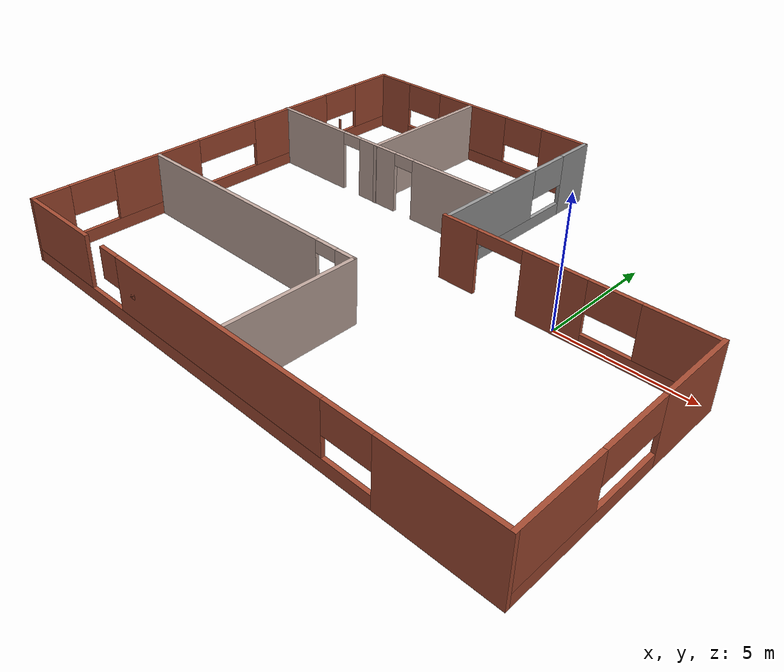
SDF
<?xml version='1.0'?>
<sdf version='1.6'>
  <model name='myoffice'>
    <pose frame=''>-12.2241 -0.674506 0 0 -0 0</pose>
    <link name='Wall_21'>
      <pose frame=''>12.5709 0.560445 0 0 -0 0</pose>
      <visual name='Wall_21_Visual_0'>
        <pose frame=''>-4.25338 0 1.25 0 -0 0</pose>
        <geometry>
          <box>
            <size>1.49323 0.15 2.5</size>
          </box>
        </geometry>
        <material>
          <script>
            <uri>file://media/materials/scripts/gazebo.material</uri>
            <name>Gazebo/Bricks</name>
          </script>
          <ambient>1 1 1 1</ambient>
        </material>
        <meta>
          <layer>0</layer>
        </meta>
      </visual>
      <collision name='Wall_21_Collision_0'>
        <geometry>
          <box>
            <size>1.49323 0.15 2.5</size>
          </box>
        </geometry>
        <pose frame=''>-4.25338 0 1.25 0 -0 0</pose>
      </collision>
      <visual name='Wall_21_Visual_1'>
        <pose frame=''>-0.514467 0 1.25 0 -0 0</pose>
        <geometry>
          <box>
            <size>2.3846 0.15 2.5</size>
          </box>
        </geometry>
        <material>
          <script>
            <uri>file://media/materials/scripts/gazebo.material</uri>
            <name>Gazebo/Bricks</name>
          </script>
          <ambient>1 1 1 1</ambient>
        </material>
        <meta>
          <layer>0</layer>
        </meta>
      </visual>
      <collision name='Wall_21_Collision_1'>
        <geometry>
          <box>
            <size>2.3846 0.15 2.5</size>
          </box>
        </geometry>
        <pose frame=''>-0.514467 0 1.25 0 -0 0</pose>
      </collision>
      <visual name='Wall_21_Visual_2'>
        <pose frame=''>2.83892 0 0.25 0 -0 0</pose>
        <geometry>
          <box>
            <size>4.32217 0.15 0.5</size>
          </box>
        </geometry>
        <material>
          <script>
            <uri>file://media/materials/scripts/gazebo.material</uri>
            <name>Gazebo/Bricks</name>
          </script>
          <ambient>1 1 1 1</ambient>
        </material>
        <meta>
          <layer>0</layer>
        </meta>
      </visual>
      <collision name='Wall_21_Collision_2'>
        <geometry>
          <box>
            <size>4.32217 0.15 0.5</size>
          </box>
        </geometry>
        <pose frame=''>2.83892 0 0.25 0 -0 0</pose>
      </collision>
      <visual name='Wall_21_Visual_3'>
        <pose frame=''>3.73892 0 1.5 0 -0 0</pose>
        <geometry>
          <box>
            <size>2.52217 0.15 2</size>
          </box>
        </geometry>
        <material>
          <script>
            <uri>file://media/materials/scripts/gazebo.material</uri>
            <name>Gazebo/Bricks</name>
          </script>
          <ambient>1 1 1 1</ambient>
        </material>
        <meta>
          <layer>0</layer>
        </meta>
      </visual>
      <collision name='Wall_21_Collision_3'>
        <geometry>
          <box>
            <size>2.52217 0.15 2</size>
          </box>
        </geometry>
        <pose frame=''>3.73892 0 1.5 0 -0 0</pose>
      </collision>
      <visual name='Wall_21_Visual_4'>
        <pose frame=''>1.57783 0 1.9 0 -0 0</pose>
        <geometry>
          <box>
            <size>1.8 0.15 1.2</size>
          </box>
        </geometry>
        <material>
          <script>
            <uri>file://media/materials/scripts/gazebo.material</uri>
            <name>Gazebo/Bricks</name>
          </script>
          <ambient>1 1 1 1</ambient>
        </material>
        <meta>
          <layer>0</layer>
        </meta>
      </visual>
      <collision name='Wall_21_Collision_4'>
        <geometry>
          <box>
            <size>1.8 0.15 1.2</size>
          </box>
        </geometry>
        <pose frame=''>1.57783 0 1.9 0 -0 0</pose>
      </collision>
      <visual name='Wall_21_Visual_5'>
        <pose frame=''>-2.60677 0 2.25 0 -0 0</pose>
        <geometry>
          <box>
            <size>1.8 0.15 0.5</size>
          </box>
        </geometry>
        <material>
          <script>
            <uri>file://media/materials/scripts/gazebo.material</uri>
            <name>Gazebo/Bricks</name>
          </script>
          <ambient>1 1 1 1</ambient>
        </material>
        <meta>
          <layer>0</layer>
        </meta>
      </visual>
      <collision name='Wall_21_Collision_5'>
        <geometry>
          <box>
            <size>1.8 0.15 1.2</size>
          </box>
        </geometry>
        <pose frame=''>-2.60677 0 2.25 0 -0 0</pose>
      </collision>
    </link>
    <link name='Wall_22'>
      <pose frame=''>17.4959 -4.11456 0 0 0 -1.5708</pose>
      <visual name='Wall_22_Visual_0'>
        <pose frame=''>-3.16191 0 1.25 0 -0 0</pose>
        <geometry>
          <box>
            <size>3.23784 0.15 2.5</size>
          </box>
        </geometry>
        <material>
          <script>
            <uri>file://media/materials/scripts/gazebo.material</uri>
            <name>Gazebo/Bricks</name>
          </script>
          <ambient>1 1 1 1</ambient>
        </material>
        <meta>
          <layer>0</layer>
        </meta>
      </visual>
      <collision name='Wall_22_Collision_0'>
        <geometry>
          <box>
            <size>3.23784 0.15 2.5</size>
          </box>
        </geometry>
        <pose frame=''>-3.16191 0 1.25 0 -0 0</pose>
      </collision>
      <visual name='Wall_22_Visual_1'>
        <pose frame=''>1.61892 0 0.25 0 -0 0</pose>
        <geometry>
          <box>
            <size>6.32383 0.15 0.5</size>
          </box>
        </geometry>
        <material>
          <script>
            <uri>file://media/materials/scripts/gazebo.material</uri>
            <name>Gazebo/Bricks</name>
          </script>
          <ambient>1 1 1 1</ambient>
        </material>
        <meta>
          <layer>0</layer>
        </meta>
      </visual>
      <collision name='Wall_22_Collision_1'>
        <geometry>
          <box>
            <size>6.32383 0.15 0.5</size>
          </box>
        </geometry>
        <pose frame=''>1.61892 0 0.25 0 -0 0</pose>
      </collision>
      <visual name='Wall_22_Visual_2'>
        <pose frame=''>3.01892 0 1.5 0 -0 0</pose>
        <geometry>
          <box>
            <size>3.52383 0.15 2</size>
          </box>
        </geometry>
        <material>
          <script>
            <uri>file://media/materials/scripts/gazebo.material</uri>
            <name>Gazebo/Bricks</name>
          </script>
          <ambient>1 1 1 1</ambient>
        </material>
        <meta>
          <layer>0</layer>
        </meta>
      </visual>
      <collision name='Wall_22_Collision_2'>
        <geometry>
          <box>
            <size>3.52383 0.15 2</size>
          </box>
        </geometry>
        <pose frame=''>3.01892 0 1.5 0 -0 0</pose>
      </collision>
      <visual name='Wall_22_Visual_3'>
        <pose frame=''>-0.142992 0 1.9 0 -0 0</pose>
        <geometry>
          <box>
            <size>2.8 0.15 1.2</size>
          </box>
        </geometry>
        <material>
          <script>
            <uri>file://media/materials/scripts/gazebo.material</uri>
            <name>Gazebo/Bricks</name>
          </script>
          <ambient>1 1 1 1</ambient>
        </material>
        <meta>
          <layer>0</layer>
        </meta>
      </visual>
      <collision name='Wall_22_Collision_3'>
        <geometry>
          <box>
            <size>2.8 0.15 1.2</size>
          </box>
        </geometry>
        <pose frame=''>-0.142992 0 1.9 0 -0 0</pose>
      </collision>
    </link>
    <link name='Wall_23'>
      <pose frame=''>7.19589 -8.82039 0 0 -0 3.14159</pose>
      <visual name='Wall_23_Visual_0'>
        <pose frame=''>-8.29614 0 1.25 0 -0 0</pose>
        <geometry>
          <box>
            <size>4.15772 0.15 2.5</size>
          </box>
        </geometry>
        <material>
          <script>
            <uri>file://media/materials/scripts/gazebo.material</uri>
            <name>Gazebo/Bricks</name>
          </script>
          <ambient>1 1 1 1</ambient>
        </material>
        <meta>
          <layer>0</layer>
        </meta>
      </visual>
      <collision name='Wall_23_Collision_0'>
        <geometry>
          <box>
            <size>4.15772 0.15 2.5</size>
          </box>
        </geometry>
        <pose frame=''>-8.29614 0 1.25 0 -0 0</pose>
      </collision>
      <visual name='Wall_23_Visual_1'>
        <pose frame=''>2.07886 0 0.25 0 -0 0</pose>
        <geometry>
          <box>
            <size>16.5923 0.15 0.5</size>
          </box>
        </geometry>
        <material>
          <script>
            <uri>file://media/materials/scripts/gazebo.material</uri>
            <name>Gazebo/Bricks</name>
          </script>
          <ambient>1 1 1 1</ambient>
        </material>
        <meta>
          <layer>0</layer>
        </meta>
      </visual>
      <collision name='Wall_23_Collision_1'>
        <geometry>
          <box>
            <size>16.5923 0.15 0.5</size>
          </box>
        </geometry>
        <pose frame=''>2.07886 0 0.25 0 -0 0</pose>
      </collision>
      <visual name='Wall_23_Visual_2'>
        <pose frame=''>0.259691 0 1.5 0 -0 0</pose>
        <geometry>
          <box>
            <size>9.35394 0.15 2</size>
          </box>
        </geometry>
        <material>
          <script>
            <uri>file://media/materials/scripts/gazebo.material</uri>
            <name>Gazebo/Bricks</name>
          </script>
          <ambient>1 1 1 1</ambient>
        </material>
        <meta>
          <layer>0</layer>
        </meta>
      </visual>
      <collision name='Wall_23_Collision_2'>
        <geometry>
          <box>
            <size>9.35394 0.15 2</size>
          </box>
        </geometry>
        <pose frame=''>0.259691 0 1.5 0 -0 0</pose>
      </collision>
      <visual name='Wall_23_Visual_3'>
        <pose frame=''>8.55583 0 1.5 0 -0 0</pose>
        <geometry>
          <box>
            <size>3.63834 0.15 2</size>
          </box>
        </geometry>
        <material>
          <script>
            <uri>file://media/materials/scripts/gazebo.material</uri>
            <name>Gazebo/Bricks</name>
          </script>
          <ambient>1 1 1 1</ambient>
        </material>
        <meta>
          <layer>0</layer>
        </meta>
      </visual>
      <collision name='Wall_23_Collision_3'>
        <geometry>
          <box>
            <size>3.63834 0.15 2</size>
          </box>
        </geometry>
        <pose frame=''>8.55583 0 1.5 0 -0 0</pose>
      </collision>
      <visual name='Wall_23_Visual_4'>
        <pose frame=''>-5.31728 0 1.9 0 -0 0</pose>
        <geometry>
          <box>
            <size>1.8 0.15 1.2</size>
          </box>
        </geometry>
        <material>
          <script>
            <uri>file://media/materials/scripts/gazebo.material</uri>
            <name>Gazebo/Bricks</name>
          </script>
          <ambient>1 1 1 1</ambient>
        </material>
        <meta>
          <layer>0</layer>
        </meta>
      </visual>
      <collision name='Wall_23_Collision_4'>
        <geometry>
          <box>
            <size>1.8 0.15 1.2</size>
          </box>
        </geometry>
        <pose frame=''>-5.31728 0 1.9 0 -0 0</pose>
      </collision>
      <visual name='Wall_23_Visual_5'>
        <pose frame=''>4.93666 0 1.9 0 -0 0</pose>
        <geometry>
          <box>
            <size>1.8 0.15 1.2</size>
          </box>
        </geometry>
        <material>
          <script>
            <uri>file://media/materials/scripts/gazebo.material</uri>
            <name>Gazebo/Bricks</name>
          </script>
          <ambient>1 1 1 1</ambient>
        </material>
        <meta>
          <layer>0</layer>
        </meta>
      </visual>
      <collision name='Wall_23_Collision_5'>
        <geometry>
          <box>
            <size>1.8 0.15 1.2</size>
          </box>
        </geometry>
        <pose frame=''>4.93666 0 1.9 0 -0 0</pose>
      </collision>
    </link>
    <link name='Wall_24'>
      <pose frame=''>-3.10411 0 0 0 -0 1.5708</pose>
      <visual name='Wall_24_Visual_0'>
        <pose frame=''>-8.15706 0 1.25 0 -0 0</pose>
        <geometry>
          <box>
            <size>1.47665 0.15 2.5</size>
          </box>
        </geometry>
        <material>
          <script>
            <uri>file://media/materials/scripts/gazebo.material</uri>
            <name>Gazebo/Bricks</name>
          </script>
          <ambient>1 1 1 1</ambient>
        </material>
        <meta>
          <layer>0</layer>
        </meta>
      </visual>
      <collision name='Wall_24_Collision_0'>
        <geometry>
          <box>
            <size>1.47665 0.15 2.5</size>
          </box>
        </geometry>
        <pose frame=''>-8.15706 0 1.25 0 -0 0</pose>
      </collision>
      <visual name='Wall_24_Visual_1'>
        <pose frame=''>-4.58531 0 0.25 0 -0 0</pose>
        <geometry>
          <box>
            <size>5.66684 0.15 0.5</size>
          </box>
        </geometry>
        <material>
          <script>
            <uri>file://media/materials/scripts/gazebo.material</uri>
            <name>Gazebo/Bricks</name>
          </script>
          <ambient>1 1 1 1</ambient>
        </material>
        <meta>
          <layer>0</layer>
        </meta>
      </visual>
      <collision name='Wall_24_Collision_1'>
        <geometry>
          <box>
            <size>5.66684 0.15 0.5</size>
          </box>
        </geometry>
        <pose frame=''>-4.58531 0 0.25 0 -0 0</pose>
      </collision>
      <visual name='Wall_24_Visual_2'>
        <pose frame=''>3.57175 0 0.25 0 -0 0</pose>
        <geometry>
          <box>
            <size>10.6473 0.15 0.5</size>
          </box>
        </geometry>
        <material>
          <script>
            <uri>file://media/materials/scripts/gazebo.material</uri>
            <name>Gazebo/Bricks</name>
          </script>
          <ambient>1 1 1 1</ambient>
        </material>
        <meta>
          <layer>0</layer>
        </meta>
      </visual>
      <collision name='Wall_24_Collision_2'>
        <geometry>
          <box>
            <size>10.6473 0.15 0.5</size>
          </box>
        </geometry>
        <pose frame=''>3.57175 0 0.25 0 -0 0</pose>
      </collision>
      <visual name='Wall_24_Visual_3'>
        <pose frame=''>3.07537 0 1.5 0 -0 0</pose>
        <geometry>
          <box>
            <size>4.05453 0.15 2</size>
          </box>
        </geometry>
        <material>
          <script>
            <uri>file://media/materials/scripts/gazebo.material</uri>
            <name>Gazebo/Bricks</name>
          </script>
          <ambient>1 1 1 1</ambient>
        </material>
        <meta>
          <layer>0</layer>
        </meta>
      </visual>
      <collision name='Wall_24_Collision_3'>
        <geometry>
          <box>
            <size>4.05453 0.15 2</size>
          </box>
        </geometry>
        <pose frame=''>3.07537 0 1.5 0 -0 0</pose>
      </collision>
      <visual name='Wall_24_Visual_4'>
        <pose frame=''>7.89901 0 1.5 0 -0 0</pose>
        <geometry>
          <box>
            <size>1.99275 0.15 2</size>
          </box>
        </geometry>
        <material>
          <script>
            <uri>file://media/materials/scripts/gazebo.material</uri>
            <name>Gazebo/Bricks</name>
          </script>
          <ambient>1 1 1 1</ambient>
        </material>
        <meta>
          <layer>0</layer>
        </meta>
      </visual>
      <collision name='Wall_24_Collision_4'>
        <geometry>
          <box>
            <size>1.99275 0.15 2</size>
          </box>
        </geometry>
        <pose frame=''>7.89901 0 1.5 0 -0 0</pose>
      </collision>
      <visual name='Wall_24_Visual_5'>
        <pose frame=''>6.00263 0 0.5 0 -0 0</pose>
        <geometry>
          <box>
            <size>0.0 0.15 1.2</size>
          </box>
        </geometry>
        <material>
          <script>
            <uri>file://media/materials/scripts/gazebo.material</uri>
            <name>Gazebo/Bricks</name>
          </script>
          <ambient>1 1 1 1</ambient>
        </material>
        <meta>
          <layer>0</layer>
        </meta>
      </visual>
      <collision name='Wall_24_Collision_5'>
        <geometry>
          <box>
            <size>1.8 0.15 1.2</size>
          </box>
        </geometry>
        <pose frame=''>6.00263 0 0.5 0 -0 0</pose>
      </collision>
      <visual name='Wall_24_Visual_6'>
        <pose frame=''>-3.68532 0 1.5 0 -0 0</pose>
        <geometry>
          <box>
            <size>3.86684 0.15 2</size>
          </box>
        </geometry>
        <material>
          <script>
            <uri>file://media/materials/scripts/gazebo.material</uri>
            <name>Gazebo/Bricks</name>
          </script>
          <ambient>1 1 1 1</ambient>
        </material>
        <meta>
          <layer>0</layer>
        </meta>
      </visual>
      <collision name='Wall_24_Collision_6'>
        <geometry>
          <box>
            <size>3.86684 0.15 2</size>
          </box>
        </geometry>
        <pose frame=''>-3.68532 0 1.5 0 -0 0</pose>
      </collision>
      <visual name='Wall_24_Visual_7'>
        <pose frame=''>-3.68532 0 1.5 0 -0 0</pose>
        <geometry>
          <box>
            <size>3.86684 0.15 2</size>
          </box>
        </geometry>
        <material>
          <script>
            <uri>file://media/materials/scripts/gazebo.material</uri>
            <name>Gazebo/Bricks</name>
          </script>
          <ambient>1 1 1 1</ambient>
        </material>
        <meta>
          <layer>0</layer>
        </meta>
      </visual>
      <collision name='Wall_24_Collision_7'>
        <geometry>
          <box>
            <size>3.86684 0.15 2</size>
          </box>
        </geometry>
        <pose frame=''>-3.68532 0 1.5 0 -0 0</pose>
      </collision>
      <visual name='Wall_24_Visual_8'>
        <pose frame=''>-6.51874 0 1.9 0 -0 0</pose>
        <geometry>
          <box>
            <size>1.8 0.15 1.2</size>
          </box>
        </geometry>
        <material>
          <script>
            <uri>file://media/materials/scripts/gazebo.material</uri>
            <name>Gazebo/Bricks</name>
          </script>
          <ambient>1 1 1 1</ambient>
        </material>
        <meta>
          <layer>0</layer>
        </meta>
      </visual>
      <collision name='Wall_24_Collision_8'>
        <geometry>
          <box>
            <size>1.8 0.15 1.2</size>
          </box>
        </geometry>
        <pose frame=''>-6.51874 0 1.9 0 -0 0</pose>
      </collision>
      <visual name='Wall_24_Visual_9'>
        <pose frame=''>6.00263 0 1.9 0 -0 0</pose>
        <geometry>
          <box>
            <size>1.8 0.15 1.2</size>
          </box>
        </geometry>
        <material>
          <script>
            <uri>file://media/materials/scripts/gazebo.material</uri>
            <name>Gazebo/Bricks</name>
          </script>
          <ambient>1 1 1 1</ambient>
        </material>
        <meta>
          <layer>0</layer>
        </meta>
      </visual>
      <collision name='Wall_24_Collision_9'>
        <geometry>
          <box>
            <size>1.8 0.15 1.2</size>
          </box>
        </geometry>
        <pose frame=''>6.00263 0 1.9 0 -0 0</pose>
      </collision>
      <visual name='Wall_24_Visual_10'>
        <pose frame=''>-0.351894 0 2 0 -0 0</pose>
        <geometry>
          <box>
            <size>2.8 0.15 1</size>
          </box>
        </geometry>
        <material>
          <script>
            <uri>file://media/materials/scripts/gazebo.material</uri>
            <name>Gazebo/Bricks</name>
          </script>
          <ambient>1 1 1 1</ambient>
        </material>
        <meta>
          <layer>0</layer>
        </meta>
      </visual>
      <collision name='Wall_24_Collision_10'>
        <geometry>
          <box>
            <size>2.8 0.15 1</size>
          </box>
        </geometry>
        <pose frame=''>-0.351894 0 2 0 -0 0</pose>
      </collision>
      <visual name='Wall_24_Visual_11'>
        <pose frame=''>-0.351894 0 2 0 -0 0</pose>
        <geometry>
          <box>
            <size>2.8 0.15 1</size>
          </box>
        </geometry>
        <material>
          <script>
            <uri>file://media/materials/scripts/gazebo.material</uri>
            <name>Gazebo/Bricks</name>
          </script>
          <ambient>1 1 1 1</ambient>
        </material>
        <meta>
          <layer>0</layer>
        </meta>
      </visual>
      <collision name='Wall_24_Collision_11'>
        <geometry>
          <box>
            <size>2.8 0.15 1</size>
          </box>
        </geometry>
        <pose frame=''>-0.351894 0 2 0 -0 0</pose>
      </collision>
    </link>
    <link name='Wall_25'>
      <pose frame=''>2.32089 8.8 0 0 -0 0</pose>
      <visual name='Wall_25_Visual_0'>
        <pose frame=''>-4.60586 0 1.25 0 -0 0</pose>
        <geometry>
          <box>
            <size>1.78828 0.15 2.5</size>
          </box>
        </geometry>
        <material>
          <script>
            <uri>file://media/materials/scripts/gazebo.material</uri>
            <name>Gazebo/Bricks</name>
          </script>
          <ambient>1 1 1 1</ambient>
        </material>
        <meta>
          <layer>0</layer>
        </meta>
      </visual>
      <collision name='Wall_25_Collision_0'>
        <geometry>
          <box>
            <size>1.78828 0.15 2.5</size>
          </box>
        </geometry>
        <pose frame=''>-4.60586 0 1.25 0 -0 0</pose>
      </collision>
      <visual name='Wall_25_Visual_1'>
        <pose frame=''>0.894142 0 0.25 0 -0 0</pose>
        <geometry>
          <box>
            <size>9.21171 0.15 0.5</size>
          </box>
        </geometry>
        <material>
          <script>
            <uri>file://media/materials/scripts/gazebo.material</uri>
            <name>Gazebo/Bricks</name>
          </script>
          <ambient>1 1 1 1</ambient>
        </material>
        <meta>
          <layer>0</layer>
        </meta>
      </visual>
      <collision name='Wall_25_Collision_1'>
        <geometry>
          <box>
            <size>9.21171 0.15 0.5</size>
          </box>
        </geometry>
        <pose frame=''>0.894142 0 0.25 0 -0 0</pose>
      </collision>
      <visual name='Wall_25_Visual_2'>
        <pose frame=''>-0.128131 0 1.5 0 -0 0</pose>
        <geometry>
          <box>
            <size>3.56717 0.15 2</size>
          </box>
        </geometry>
        <material>
          <script>
            <uri>file://media/materials/scripts/gazebo.material</uri>
            <name>Gazebo/Bricks</name>
          </script>
          <ambient>1 1 1 1</ambient>
        </material>
        <meta>
          <layer>0</layer>
        </meta>
      </visual>
      <collision name='Wall_25_Collision_2'>
        <geometry>
          <box>
            <size>3.56717 0.15 2</size>
          </box>
        </geometry>
        <pose frame=''>-0.128131 0 1.5 0 -0 0</pose>
      </collision>
      <visual name='Wall_25_Visual_3'>
        <pose frame=''>4.47773 0 1.5 0 -0 0</pose>
        <geometry>
          <box>
            <size>2.04455 0.15 2</size>
          </box>
        </geometry>
        <material>
          <script>
            <uri>file://media/materials/scripts/gazebo.material</uri>
            <name>Gazebo/Bricks</name>
          </script>
          <ambient>1 1 1 1</ambient>
        </material>
        <meta>
          <layer>0</layer>
        </meta>
      </visual>
      <collision name='Wall_25_Collision_3'>
        <geometry>
          <box>
            <size>2.04455 0.15 2</size>
          </box>
        </geometry>
        <pose frame=''>4.47773 0 1.5 0 -0 0</pose>
      </collision>
      <visual name='Wall_25_Visual_4'>
        <pose frame=''>-2.81171 0 1.9 0 -0 0</pose>
        <geometry>
          <box>
            <size>1.8 0.15 1.2</size>
          </box>
        </geometry>
        <material>
          <script>
            <uri>file://media/materials/scripts/gazebo.material</uri>
            <name>Gazebo/Bricks</name>
          </script>
          <ambient>1 1 1 1</ambient>
        </material>
        <meta>
          <layer>0</layer>
        </meta>
      </visual>
      <collision name='Wall_25_Collision_4'>
        <geometry>
          <box>
            <size>1.8 0.15 1.2</size>
          </box>
        </geometry>
        <pose frame=''>-2.81171 0 1.9 0 -0 0</pose>
      </collision>
      <visual name='Wall_25_Visual_5'>
        <pose frame=''>2.55545 0 1.9 0 -0 0</pose>
        <geometry>
          <box>
            <size>1.8 0.15 1.2</size>
          </box>
        </geometry>
        <material>
          <script>
            <uri>file://media/materials/scripts/gazebo.material</uri>
            <name>Gazebo/Bricks</name>
          </script>
          <ambient>1 1 1 1</ambient>
        </material>
        <meta>
          <layer>0</layer>
        </meta>
      </visual>
      <collision name='Wall_25_Collision_5'>
        <geometry>
          <box>
            <size>1.8 0.15 1.2</size>
          </box>
        </geometry>
        <pose frame=''>2.55545 0 1.9 0 -0 0</pose>
      </collision>
    </link>
    <link name='Wall_26'>
      <pose frame=''>7.74589 4.75 0 0 0 -1.5708</pose>
      <visual name='Wall_26_Visual_0'>
        <pose frame=''>-3.32861 0 1.25 0 -0 0</pose>
        <geometry>
          <box>
            <size>1.63356 0.15 2.5</size>
          </box>
        </geometry>
        <material>
          <script>
            <uri>file://media/materials/scripts/gazebo.material</uri>
            <name>Gazebo/Grey</name>
          </script>
          <ambient>1 1 1 1</ambient>
        </material>
        <meta>
          <layer>0</layer>
        </meta>
      </visual>
      <collision name='Wall_26_Collision_0'>
        <geometry>
          <box>
            <size>1.63356 0.15 2.5</size>
          </box>
        </geometry>
        <pose frame=''>-3.32861 0 1.25 0 -0 0</pose>
      </collision>
      <visual name='Wall_26_Visual_1'>
        <pose frame=''>0.816778 0 0.25 0 -0 0</pose>
        <geometry>
          <box>
            <size>6.65722 0.15 0.5</size>
          </box>
        </geometry>
        <material>
          <script>
            <uri>file://media/materials/scripts/gazebo.material</uri>
            <name>Gazebo/Grey</name>
          </script>
          <ambient>1 1 1 1</ambient>
        </material>
        <meta>
          <layer>0</layer>
        </meta>
      </visual>
      <collision name='Wall_26_Collision_1'>
        <geometry>
          <box>
            <size>6.65722 0.15 0.5</size>
          </box>
        </geometry>
        <pose frame=''>0.816778 0 0.25 0 -0 0</pose>
      </collision>
      <visual name='Wall_26_Visual_2'>
        <pose frame=''>1.71678 0 1.5 0 -0 0</pose>
        <geometry>
          <box>
            <size>4.85722 0.15 2</size>
          </box>
        </geometry>
        <material>
          <script>
            <uri>file://media/materials/scripts/gazebo.material</uri>
            <name>Gazebo/Grey</name>
          </script>
          <ambient>1 1 1 1</ambient>
        </material>
        <meta>
          <layer>0</layer>
        </meta>
      </visual>
      <collision name='Wall_26_Collision_2'>
        <geometry>
          <box>
            <size>4.85722 0.15 2</size>
          </box>
        </geometry>
        <pose frame=''>1.71678 0 1.5 0 -0 0</pose>
      </collision>
      <visual name='Wall_26_Visual_3'>
        <pose frame=''>-1.61183 0 1.9 0 -0 0</pose>
        <geometry>
          <box>
            <size>1.8 0.15 1.2</size>
          </box>
        </geometry>
        <material>
          <script>
            <uri>file://media/materials/scripts/gazebo.material</uri>
            <name>Gazebo/Grey</name>
          </script>
          <ambient>1 1 1 1</ambient>
        </material>
        <meta>
          <layer>0</layer>
        </meta>
      </visual>
      <collision name='Wall_26_Collision_3'>
        <geometry>
          <box>
            <size>1.8 0.15 1.2</size>
          </box>
        </geometry>
        <pose frame=''>-1.61183 0 1.9 0 -0 0</pose>
      </collision>
    </link>
    <link name='Wall_29'>
      <pose frame=''>2.28445 2.93924 0 0 -0 0</pose>
      <visual name='Wall_29_Visual_0'>
        <pose frame=''>-3.71411 0 1.25 0 -0 0</pose>
        <geometry>
          <box>
            <size>3.57178 0.15 2.5</size>
          </box>
        </geometry>
        <material>
          <script>
            <uri>file://media/materials/scripts/gazebo.material</uri>
            <name>Gazebo/Grey</name>
          </script>
          <ambient>0.760784 0.662745 0.627451 1</ambient>
        </material>
        <meta>
          <layer>0</layer>
        </meta>
      </visual>
      <collision name='Wall_29_Collision_0'>
        <geometry>
          <box>
            <size>3.57178 0.15 2.5</size>
          </box>
        </geometry>
        <pose frame=''>-3.71411 0 1.25 0 -0 0</pose>
      </collision>
      <visual name='Wall_29_Visual_1'>
        <pose frame=''>-0.075264 0 1.25 0 -0 0</pose>
        <geometry>
          <box>
            <size>1.90591 0.15 2.5</size>
          </box>
        </geometry>
        <material>
          <script>
            <uri>file://media/materials/scripts/gazebo.material</uri>
            <name>Gazebo/Grey</name>
          </script>
          <ambient>0.760784 0.662745 0.627451 1</ambient>
        </material>
        <meta>
          <layer>0</layer>
        </meta>
      </visual>
      <collision name='Wall_29_Collision_1'>
        <geometry>
          <box>
            <size>1.90591 0.15 2.5</size>
          </box>
        </geometry>
        <pose frame=''>-0.075264 0 1.25 0 -0 0</pose>
      </collision>
      <visual name='Wall_29_Visual_2'>
        <pose frame=''>3.63885 0 1.25 0 -0 0</pose>
        <geometry>
          <box>
            <size>3.72231 0.15 2.5</size>
          </box>
        </geometry>
        <material>
          <script>
            <uri>file://media/materials/scripts/gazebo.material</uri>
            <name>Gazebo/Grey</name>
          </script>
          <ambient>0.760784 0.662745 0.627451 1</ambient>
        </material>
        <meta>
          <layer>0</layer>
        </meta>
      </visual>
      <collision name='Wall_29_Collision_2'>
        <geometry>
          <box>
            <size>3.72231 0.15 2.5</size>
          </box>
        </geometry>
        <pose frame=''>3.63885 0 1.25 0 -0 0</pose>
      </collision>
      <visual name='Wall_29_Visual_3'>
        <pose frame=''>-1.47822 0 2.25 0 -0 0</pose>
        <geometry>
          <box>
            <size>0.9 0.15 0.5</size>
          </box>
        </geometry>
        <material>
          <script>
            <uri>file://media/materials/scripts/gazebo.material</uri>
            <name>Gazebo/Grey</name>
          </script>
          <ambient>0.760784 0.662745 0.627451 1</ambient>
        </material>
        <meta>
          <layer>0</layer>
        </meta>
      </visual>
      <collision name='Wall_29_Collision_3'>
        <geometry>
          <box>
            <size>0.9 0.15 0.5</size>
          </box>
        </geometry>
        <pose frame=''>-1.47822 0 2.25 0 -0 0</pose>
      </collision>
      <visual name='Wall_29_Visual_4'>
        <pose frame=''>1.32769 0 2.25 0 -0 0</pose>
        <geometry>
          <box>
            <size>0.9 0.15 0.5</size>
          </box>
        </geometry>
        <material>
          <script>
            <uri>file://media/materials/scripts/gazebo.material</uri>
            <name>Gazebo/Grey</name>
          </script>
          <ambient>0.760784 0.662745 0.627451 1</ambient>
        </material>
        <meta>
          <layer>0</layer>
        </meta>
      </visual>
      <collision name='Wall_29_Collision_4'>
        <geometry>
          <box>
            <size>0.9 0.15 0.5</size>
          </box>
        </geometry>
        <pose frame=''>1.32769 0 2.25 0 -0 0</pose>
      </collision>
    </link>
    <link name='Wall_31'>
      <collision name='Wall_31_Collision'>
        <geometry>
          <box>
            <size>6 0.15 2.5</size>
          </box>
        </geometry>
        <pose frame=''>0 0 1.25 0 -0 0</pose>
      </collision>
      <visual name='Wall_31_Visual'>
        <pose frame=''>0 0 1.25 0 -0 0</pose>
        <geometry>
          <box>
            <size>6 0.15 2.5</size>
          </box>
        </geometry>
        <material>
          <script>
            <uri>file://media/materials/scripts/gazebo.material</uri>
            <name>Gazebo/Grey</name>
          </script>
          <ambient>0.760784 0.662745 0.627451 1</ambient>
        </material>
        <meta>
          <layer>0</layer>
        </meta>
      </visual>
      <pose frame=''>2.1321 5.8419 0 0 0 -1.5708</pose>
    </link>
    <link name='Wall_34'>
      <pose frame=''>2.19029 -3.62845 0 0 -0 0</pose>
      <visual name='Wall_34_Visual_0'>
        <pose frame=''>-0.875699 0 1.25 0 -0 0</pose>
        <geometry>
          <box>
            <size>8.9986 0.15 2.5</size>
          </box>
        </geometry>
        <material>
          <script>
            <uri>file://media/materials/scripts/gazebo.material</uri>
            <name>Gazebo/Grey</name>
          </script>
          <ambient>0.760784 0.662745 0.627451 1</ambient>
        </material>
        <meta>
          <layer>0</layer>
        </meta>
      </visual>
      <collision name='Wall_34_Collision_0'>
        <geometry>
          <box>
            <size>8.9986 0.15 2.5</size>
          </box>
        </geometry>
        <pose frame=''>-0.875699 0 1.25 0 -0 0</pose>
      </collision>
      <visual name='Wall_34_Visual_1'>
        <pose frame=''>4.9493 0 1.25 0 -0 0</pose>
        <geometry>
          <box>
            <size>0.851399 0.15 2.5</size>
          </box>
        </geometry>
        <material>
          <script>
            <uri>file://media/materials/scripts/gazebo.material</uri>
            <name>Gazebo/Grey</name>
          </script>
          <ambient>0.760784 0.662745 0.627451 1</ambient>
        </material>
        <meta>
          <layer>0</layer>
        </meta>
      </visual>
      <collision name='Wall_34_Collision_1'>
        <geometry>
          <box>
            <size>0.851399 0.15 2.5</size>
          </box>
        </geometry>
        <pose frame=''>4.9493 0 1.25 0 -0 0</pose>
      </collision>
      <visual name='Wall_34_Visual_2'>
        <pose frame=''>4.0736 0 2.25 0 -0 0</pose>
        <geometry>
          <box>
            <size>0.9 0.15 0.5</size>
          </box>
        </geometry>
        <material>
          <script>
            <uri>file://media/materials/scripts/gazebo.material</uri>
            <name>Gazebo/Grey</name>
          </script>
          <ambient>0.760784 0.662745 0.627451 1</ambient>
        </material>
        <meta>
          <layer>0</layer>
        </meta>
      </visual>
      <collision name='Wall_34_Collision_2'>
        <geometry>
          <box>
            <size>0.9 0.15 0.5</size>
          </box>
        </geometry>
        <pose frame=''>4.0736 0 2.25 0 -0 0</pose>
      </collision>
    </link>
    <link name='Wall_35'>
      <collision name='Wall_35_Collision'>
        <geometry>
          <box>
            <size>5.25 0.15 2.5</size>
          </box>
        </geometry>
        <pose frame=''>0 0 1.25 0 -0 0</pose>
      </collision>
      <visual name='Wall_35_Visual'>
        <pose frame=''>0 0 1.25 0 -0 0</pose>
        <geometry>
          <box>
            <size>5.25 0.15 2.5</size>
          </box>
        </geometry>
        <material>
          <script>
            <uri>file://media/materials/scripts/gazebo.material</uri>
            <name>Gazebo/Grey</name>
          </script>
          <ambient>0.760784 0.662745 0.627451 1</ambient>
        </material>
        <meta>
          <layer>0</layer>
        </meta>
      </visual>
      <pose frame=''>7.49029 -6.17845 0 0 0 -1.5708</pose>
    </link>

    <static>1</static>
  </model>
</sdf>
